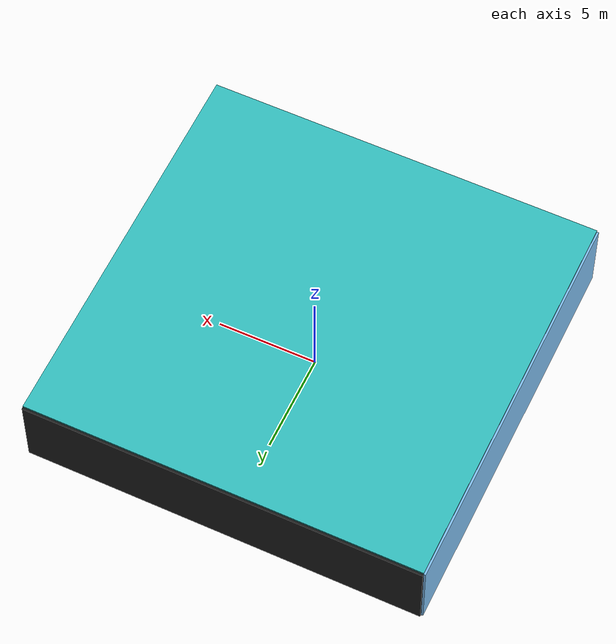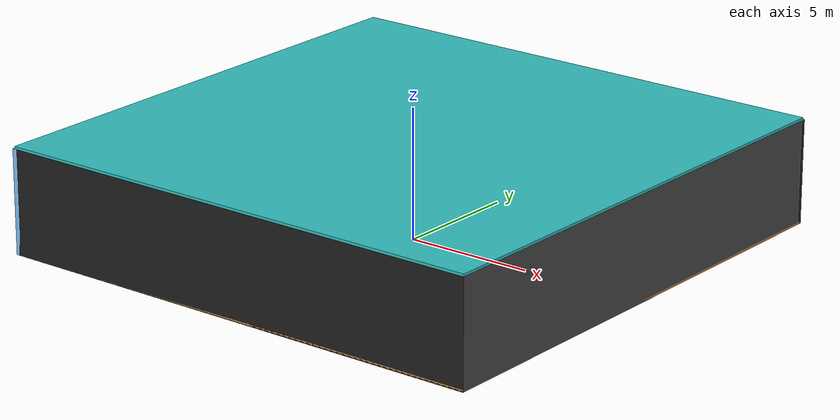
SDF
<sdf version="1.4">
 <world name="default">
  <physics type="ode">
   <max_step_size>0.001</max_step_size>
   <real_time_factor>1</real_time_factor>
   <real_time_update_rate>1000</real_time_update_rate>
   <gravity>0 0 -9.8</gravity>
  </physics>
  <scene><ambient>0.4 0.4 0.4 1</ambient><background>0.7 0.7 0.7 1</background><shadows>1</shadows></scene>
  <model name="Surrounding">
   <static>1</static>
   <link name="Ceiling">
    <collision name="Ceiling_Collision"><geometry><box><size>20 20 0.1</size></box></geometry></collision>
    <visual name="Ceiling_Visual">
     <geometry><box><size>20 20 0.1</size></box></geometry>
     <material>
      <script><uri>file://media/materials/scripts/gazebo.material</uri><name>Gazebo/Turquoise</name></script>
     </material>
    </visual>
    <pose>0 0 4.05 0 0 0</pose>
   </link>
   <link name="Wall_South">
    <collision name="Wall_South_Collision">
     <geometry><box><size>20 0 4</size></box></geometry>
     <pose>0 0 2 0 -0 0</pose>
    </collision>
    <visual name="Wall_South_Visual">
     <pose>0 0 2 0 -0 0</pose>
     <geometry><box><size>20 0 4</size></box></geometry>
     <material>
      <script><uri>file://media/materials/scripts/gazebo.material</uri><name>Gazebo/FlatBlack</name></script>
     </material>
    </visual>
    <velocity_decay><linear>0</linear><angular>0</angular></velocity_decay>
    <pose>0 -10 0 0 -0 0</pose>
   </link>
   <link name="Wall_East">
    <collision name="Wall_21_Collision">
     <geometry><box><size>20 0 4</size></box></geometry>
     <pose>0 0 2 0 -0 0</pose>
    </collision>
    <visual name="Wall_21_Visual">
     <pose>0 0 2 0 -0 0</pose>
     <geometry><box><size>20 0 4</size></box></geometry>
     <material>
      <script><uri>file://media/materials/scripts/gazebo.material</uri><name>Gazebo/Road</name></script>
     </material>
    </visual>
    <velocity_decay><linear>0</linear><angular>0</angular></velocity_decay>
    <pose>10 0 0 0 -0 1.5708</pose>
   </link>
   <link name="Wall_North">
    <collision name="Wall_22_Collision">
     <geometry><box><size>20 0.2 4</size></box></geometry>
     <pose>0 0 2 0 -0 0</pose>
    </collision>
    <visual name="Wall_22_Visual">
     <pose>0 0 2 0 -0 0</pose>
     <geometry><box><size>20 0.2 4</size></box></geometry>
     <material>
      <script><uri>file://media/materials/scripts/gazebo.material</uri><name>Gazebo/FlatBlack</name></script>
     </material>
    </visual>
    <velocity_decay><linear>0</linear><angular>0</angular></velocity_decay>
    <pose>0 10 0 0 -0 0</pose>
   </link>
   <link name="Wall_West">
    <collision name="Wall_23_Collision">
     <geometry><box><size>20 0.2 4</size></box></geometry>
     <pose>0 0 2 0 -0 0</pose>
    </collision>
    <visual name="Wall_23_Visual">
     <pose>0 0 2 0 -0 0</pose>
     <geometry><box><size>20 0.2 4</size></box></geometry>
     <material>
      <script><uri>file://media/materials/scripts/gazebo.material</uri><name>Gazebo/SkyBlue</name></script>
     </material>
    </visual>
    <velocity_decay><linear>0</linear><angular>0</angular></velocity_decay>
    <pose>-10 0 0 0 0 -1.5708</pose>
   </link>
   <link name="Ground_link">
    <collision name="collision">
     <pose>0 0 .05 0 -0 0</pose>
     <geometry><box><size>20 20 0.1</size></box></geometry>
    </collision>
    <visual name="visual">
     <pose>0 0 .05 0 -0 0</pose>
     <geometry><box><size>20 20 0.1</size></box></geometry>
     <material>
      <script><uri>file://media/materials/scripts/gazebo.material</uri><name>Gazebo/WoodFloor</name></script>
     </material>
    </visual>
   </link>
   <static>1</static>
  </model>
  <spherical_coordinates>
   <surface_model>EARTH_WGS84</surface_model>
   <latitude_deg>0</latitude_deg>
   <longitude_deg>0</longitude_deg>
   <elevation>0</elevation>
   <heading_deg>0</heading_deg>
  </spherical_coordinates>
  <light name="lightball_0" type="diffuse">
   <diffuse>0.8 0.8 0.8 1</diffuse>
   <specular>0.2 0.2 0.2 1</specular>
   <attenuation>
    <range>100</range>
    <constant>0.7</constant>
    <linear>0.01</linear>
    <quadratic>0.001</quadratic>
   </attenuation>
   <direction>-0.5 0.1 -0.9</direction>
   <pose>4.03177329889 9.82878373897 3.31045276476 0 0 0</pose>
  </light>
  <light name="lightball_1" type="diffuse">
   <diffuse>0.8 0.8 0.8 1</diffuse>
   <specular>0.2 0.2 0.2 1</specular>
   <attenuation>
    <range>100</range>
    <constant>0.7</constant>
    <linear>0.01</linear>
    <quadratic>0.001</quadratic>
   </attenuation>
   <direction>-0.5 0.1 -0.9</direction>
   <pose>9.72484503148 7.57059473767 0.500990831328 0 0 0</pose>
  </light>
  <light name="lightball_2" type="diffuse">
   <diffuse>0.8 0.8 0.8 1</diffuse>
   <specular>0.2 0.2 0.2 1</specular>
   <attenuation>
    <range>100</range>
    <constant>0.7</constant>
    <linear>0.01</linear>
    <quadratic>0.001</quadratic>
   </attenuation>
   <direction>-0.5 0.1 -0.9</direction>
   <pose>-8.33662259049 1.96324944046 3.18678403864 0 0 0</pose>
  </light>
  <light name="lightball_3" type="diffuse">
   <diffuse>0.8 0.8 0.8 1</diffuse>
   <specular>0.2 0.2 0.2 1</specular>
   <attenuation>
    <range>100</range>
    <constant>0.7</constant>
    <linear>0.01</linear>
    <quadratic>0.001</quadratic>
   </attenuation>
   <direction>-0.5 0.1 -0.9</direction>
   <pose>7.56543305696 -6.15794112099 2.93224492567 0 0 0</pose>
  </light>
  <light name="lightball_4" type="diffuse">
   <diffuse>0.8 0.8 0.8 1</diffuse>
   <specular>0.2 0.2 0.2 1</specular>
   <attenuation>
    <range>100</range>
    <constant>0.7</constant>
    <linear>0.01</linear>
    <quadratic>0.001</quadratic>
   </attenuation>
   <direction>-0.5 0.1 -0.9</direction>
   <pose>2.733702367 -9.57192091703 2.97269874132 0 0 0</pose>
  </light>
  <light name="lightball_5" type="diffuse">
   <diffuse>0.8 0.8 0.8 1</diffuse>
   <specular>0.2 0.2 0.2 1</specular>
   <attenuation>
    <range>100</range>
    <constant>0.7</constant>
    <linear>0.01</linear>
    <quadratic>0.001</quadratic>
   </attenuation>
   <direction>-0.5 0.1 -0.9</direction>
   <pose>1.02659199495 -5.80060057931 1.09268873889 0 0 0</pose>
  </light>
  <light name="lightball_6" type="diffuse">
   <diffuse>0.8 0.8 0.8 1</diffuse>
   <specular>0.2 0.2 0.2 1</specular>
   <attenuation>
    <range>100</range>
    <constant>0.7</constant>
    <linear>0.01</linear>
    <quadratic>0.001</quadratic>
   </attenuation>
   <direction>-0.5 0.1 -0.9</direction>
   <pose>-5.16189715094 -3.66595469563 2.27138593607 0 0 0</pose>
  </light>
  <light name="lightball_7" type="diffuse">
   <diffuse>0.8 0.8 0.8 1</diffuse>
   <specular>0.2 0.2 0.2 1</specular>
   <attenuation>
    <range>100</range>
    <constant>0.7</constant>
    <linear>0.01</linear>
    <quadratic>0.001</quadratic>
   </attenuation>
   <direction>-0.5 0.1 -0.9</direction>
   <pose>-8.13415040353 -7.95175589784 2.95140503501 0 0 0</pose>
  </light>
  <light name="lightball_8" type="diffuse">
   <diffuse>0.8 0.8 0.8 1</diffuse>
   <specular>0.2 0.2 0.2 1</specular>
   <attenuation>
    <range>100</range>
    <constant>0.7</constant>
    <linear>0.01</linear>
    <quadratic>0.001</quadratic>
   </attenuation>
   <direction>-0.5 0.1 -0.9</direction>
   <pose>9.04634358606 -6.19009337786 2.93601534485 0 0 0</pose>
  </light>
  <include><uri>model://cabinet</uri><pose>-4.49686841202 7.81235276569 0 0 0 2.76507465415</pose></include>
  <include><uri>model://table</uri><pose>-2.16707594367 -7.46638252988 0 0 0 1.21958546361</pose></include>
  <include>
   <uri>model://robocup_3Dsim_goal</uri>
   <pose>-1.91140755117 -5.16273999301 0 0 0 1.1051158967</pose>
  </include>
 </world>
</sdf>

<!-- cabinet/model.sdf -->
<sdf version="1.5">
  <model name="cabinet">
    <static>true</static>
    <link name="cabinet_bottom_plate">
      <inertial>
        <pose>0 0 -1 0 0 0</pose>
        <inertia>
          <ixx>2.050000</ixx>
          <ixy>0</ixy>
          <ixz>0</ixz>
          <iyy>2.050000</iyy>
          <iyz>0</iyz>
          <izz>2.050000</izz>
        </inertia>
        <mass>25.000000</mass>
      </inertial>
      <collision name="cabinet_bottom_plate_geom">
        <pose>0 0 0.010000 0 0 0</pose>
        <geometry>
          <box>
            <size>0.450000 0.450000 0.020000</size>
          </box>
        </geometry>
      </collision>
      <visual name="cabinet_bottom_plate_geom_visual">
        <pose>0 0 0.010000 0 0 0</pose>
        <geometry>
          <box>
            <size>0.450000 0.450000 0.020000</size>
          </box>
        </geometry>
        <material>
          <script>
            <uri>model://media/materials/scripts/gazebo.material</uri>
            <name>Gazebo/Wood</name>
          </script>
        </material>
      </visual>
      <collision name="cabinet_bottom_plate_geom_cabinet_back_plate">
        <pose>0.235000 0 0.510000 0 0 0</pose>
        <geometry>
          <box>
            <size>0.020000 0.450000 1.020000</size>
          </box>
        </geometry>
      </collision>
      <visual name="cabinet_bottom_plate_geom_cabinet_back_plate_visual">
        <pose>0.235000 0 0.510000 0 0 0</pose>
        <geometry>
          <box>
            <size>0.020000 0.450000 1.020000</size>
          </box>
        </geometry>
        <material>
          <script>
            <uri>model://media/materials/scripts/gazebo.material</uri>
            <name>Gazebo/Wood</name>
          </script>
        </material>
      </visual>
      <collision name="cabinet_bottom_plate_geom_cabinet_left_plate">
        <pose>0 0.235000 0.510000 0 0 0</pose>
        <geometry>
          <box>
            <size>0.450000 0.020000 1.020000</size>
          </box>
        </geometry>
      </collision>
      <visual name="cabinet_bottom_plate_geom_cabinet_left_plate_visual">
        <pose>0 0.235000 0.510000 0 0 0</pose>
        <geometry>
          <box>
            <size>0.450000 0.020000 1.020000</size>
          </box>
        </geometry>
        <material>
          <script>
            <uri>model://media/materials/scripts/gazebo.material</uri>
            <name>Gazebo/Wood</name>
          </script>
        </material>
      </visual>
      <collision name="cabinet_bottom_plate_geom_cabinet_middle_plate">
        <pose>0 0 0.510000 0 0 0</pose>
        <geometry>
          <box>
            <size>0.450000 0.450000 0.020000</size>
          </box>
        </geometry>
      </collision>
      <visual name="cabinet_bottom_plate_geom_cabinet_middle_plate_visual">
        <pose>0 0 0.510000 0 0 0</pose>
        <geometry>
          <box>
            <size>0.450000 0.450000 0.020000</size>
          </box>
        </geometry>
        <material>
          <script>
            <uri>model://media/materials/scripts/gazebo.material</uri>
            <name>Gazebo/Wood</name>
          </script>
        </material>
      </visual>
      <collision name="cabinet_bottom_plate_geom_cabinet_right_plate">
        <pose>0 -0.235000 0.510000 0 0 0</pose>
        <geometry>
          <box>
            <size>0.450000 0.020000 1.020000</size>
          </box>
        </geometry>
      </collision>
      <visual name="cabinet_bottom_plate_geom_cabinet_right_plate_visual">
        <pose>0 -0.235000 0.510000 0 0 0</pose>
        <geometry>
          <box>
            <size>0.450000 0.020000 1.020000</size>
          </box>
        </geometry>
        <material>
          <script>
            <uri>model://media/materials/scripts/gazebo.material</uri>
            <name>Gazebo/Wood</name>
          </script>
        </material>
      </visual>
      <collision name="cabinet_bottom_plate_geom_cabinet_top_plate">
        <pose>0 0 1.010000 0 0 0</pose>
        <geometry>
          <box>
            <size>0.450000 0.450000 0.020000</size>
          </box>
        </geometry>
      </collision>
      <visual name="cabinet_bottom_plate_geom_cabinet_top_plate_visual">
        <pose>0 0 1.010000 0 0 0</pose>
        <geometry>
          <box>
            <size>0.450000 0.450000 0.020000</size>
          </box>
        </geometry>
        <material>
          <script>
            <uri>model://media/materials/scripts/gazebo.material</uri>
            <name>Gazebo/Wood</name>
          </script>
        </material>
      </visual>
    </link>
  </model>
</sdf>

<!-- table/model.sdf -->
<sdf version="1.5">
  <model name="table">
    <static>true</static>
    <link name="link">
      <collision name="surface">
        <pose>0 0 1.0 0 0 0</pose>
        <geometry>
          <box>
            <size>1.5 0.8 0.03</size>
          </box>
        </geometry>
        <surface>
          <friction>
            <ode>
              <mu>0.6</mu>
              <mu2>0.6</mu2>
            </ode>
          </friction>
        </surface>
      </collision>
      <visual name="visual1">
        <pose>0 0 1.0 0 0 0</pose>
        <geometry>
          <box>
            <size>1.5 0.8 0.03</size>
          </box>
        </geometry>
        <material>
          <script>
            <uri>model://media/materials/scripts/gazebo.material</uri>
            <name>Gazebo/Wood</name>
          </script>
        </material>
      </visual>
      <collision name="front_left_leg">
        <pose>0.68 0.38 0.5 0 0 0</pose>
        <geometry>
          <cylinder>
            <radius>0.02</radius>
            <length>1.0</length>
          </cylinder>
        </geometry>
      </collision>
      <visual name="front_left_leg">
        <pose>0.68 0.38 0.5 0 0 0</pose>
        <geometry>
          <cylinder>
            <radius>0.02</radius>
            <length>1.0</length>
          </cylinder>
        </geometry>
        <material>
          <script>
            <uri>model://media/materials/scripts/gazebo.material</uri>
            <name>Gazebo/Grey</name>
          </script>
        </material>
      </visual>
      <collision name="front_right_leg">
        <pose>0.68 -0.38 0.5 0 0 0</pose>
        <geometry>
          <cylinder>
            <radius>0.02</radius>
            <length>1.0</length>
          </cylinder>
        </geometry>
      </collision>
      <visual name="front_right_leg">
        <pose>0.68 -0.38 0.5 0 0 0</pose>
        <geometry>
          <cylinder>
            <radius>0.02</radius>
            <length>1.0</length>
          </cylinder>
        </geometry>
        <material>
          <script>
            <uri>model://media/materials/scripts/gazebo.material</uri>
            <name>Gazebo/Grey</name>
          </script>
        </material>
      </visual>
      <collision name="back_right_leg">
        <pose>-0.68 -0.38 0.5 0 0 0</pose>
        <geometry>
          <cylinder>
            <radius>0.02</radius>
            <length>1.0</length>
          </cylinder>
        </geometry>
      </collision>
      <visual name="back_right_leg">
        <pose>-0.68 -0.38 0.5 0 0 0</pose>
        <geometry>
          <cylinder>
            <radius>0.02</radius>
            <length>1.0</length>
          </cylinder>
        </geometry>
        <material>
          <script>
            <uri>model://media/materials/scripts/gazebo.material</uri>
            <name>Gazebo/Grey</name>
          </script>
        </material>
      </visual>
      <collision name="back_left_leg">
        <pose>-0.68 0.38 0.5 0 0 0</pose>
        <geometry>
          <cylinder>
            <radius>0.02</radius>
            <length>1.0</length>
          </cylinder>
        </geometry>
      </collision>
      <visual name="back_left_leg">
        <pose>-0.68 0.38 0.5 0 0 0</pose>
        <geometry>
          <cylinder>
            <radius>0.02</radius>
            <length>1.0</length>
          </cylinder>
        </geometry>
        <material>
          <script>
            <uri>model://media/materials/scripts/gazebo.material</uri>
            <name>Gazebo/Grey</name>
          </script>
        </material>
      </visual>
    </link>
  </model>
</sdf>

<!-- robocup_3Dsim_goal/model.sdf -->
<sdf version="1.5">
  <model name="robocup_3d_goal">
    <static>true</static>
    <link name="left_post">
      <pose>0 1.05 0.45 0 0 0</pose>
      <collision name="collision">
        <geometry>
          <cylinder>
            <radius>0.05</radius>
            <length>0.9</length>
          </cylinder>
        </geometry>
      </collision>
      <visual name="visual">
        <geometry>
          <cylinder>
            <radius>0.05</radius>
            <length>0.9</length>
          </cylinder>
        </geometry>
        <material>
          <script>
            <uri>file://media/materials/scripts/gazebo.material</uri>
            <name>Gazebo/ZincYellow</name>
          </script>
        </material>
      </visual>
    </link>
    <link name="left_support_horiz_lower">
      <pose>0.30 1.05 0.01 0 0 0</pose>
      <collision name="collision">
        <geometry>
          <box>
            <size>0.50 0.02 0.02</size>
          </box>
        </geometry>
      </collision>
      <visual name="visual">
        <geometry>
          <box>
            <size>0.50 0.02 0.02</size>
          </box>
        </geometry>
        <material>
          <script>
            <uri>file://media/materials/scripts/gazebo.material</uri>
            <name>Gazebo/White</name>
          </script>
        </material>
      </visual>
    </link>
    <link name="left_support_horiz_upper">
      <pose>0.30 1.05 0.79 0 0 0</pose>
      <collision name="collision">
        <geometry>
          <box>
            <size>0.50 0.02 0.02</size>
          </box>
        </geometry>
      </collision>
      <visual name="visual">
        <geometry>
          <box>
            <size>0.50 0.02 0.02</size>
          </box>
        </geometry>
        <material>
          <script>
            <uri>file://media/materials/scripts/gazebo.material</uri>
            <name>Gazebo/White</name>
          </script>
        </material>
      </visual>
    </link>
    <link name="left_support_vertical">
      <pose>0.56 1.05 0.4 0 1.5708 0</pose>
      <collision name="collision">
        <geometry>
          <box>
            <size>0.80 0.02 0.02</size>
          </box>
        </geometry>
      </collision>
      <visual name="visual">
        <geometry>
          <box>
            <size>0.80 0.02 0.02</size>
          </box>
        </geometry>
        <material>
          <script>
            <uri>file://media/materials/scripts/gazebo.material</uri>
            <name>Gazebo/White</name>
          </script>
        </material>
      </visual>
    </link>
    <link name="right_support_horiz_lower">
      <pose>0.30 -1.05 0.01 0 0 0</pose>
      <collision name="collision">
        <geometry>
          <box>
            <size>0.50 0.02 0.02</size>
          </box>
        </geometry>
      </collision>
      <visual name="visual">
        <geometry>
          <box>
            <size>0.50 0.02 0.02</size>
          </box>
        </geometry>
        <material>
          <script>
            <uri>file://media/materials/scripts/gazebo.material</uri>
            <name>Gazebo/White</name>
          </script>
        </material>
      </visual>
    </link>
    <link name="right_support_horiz_upper">
      <pose>0.30 -1.05 0.79 0 0 0</pose>
      <collision name="collision">
        <geometry>
          <box>
            <size>0.50 0.02 0.02</size>
          </box>
        </geometry>
      </collision>
      <visual name="visual">
        <geometry>
          <box>
            <size>0.50 0.02 0.02</size>
          </box>
        </geometry>
        <material>
          <script>
            <uri>file://media/materials/scripts/gazebo.material</uri>
            <name>Gazebo/White</name>
          </script>
        </material>
      </visual>
    </link>
    <link name="right_support_vertical">
      <pose>0.56 -1.05 0.4 0 1.5708 0</pose>
      <collision name="collision">
        <geometry>
          <box>
            <size>0.80 0.02 0.02</size>
          </box>
        </geometry>
      </collision>
      <visual name="visual">
        <geometry>
          <box>
            <size>0.80 0.02 0.02</size>
          </box>
        </geometry>
        <material>
          <script>
            <uri>file://media/materials/scripts/gazebo.material</uri>
            <name>Gazebo/White</name>
          </script>
        </material>
      </visual>
    </link>
    <link name="center_support_horiz_lower">
      <pose>0.56 0 0.01 0 1.5708 0</pose>
      <collision name="collision">
        <geometry>
          <box>
            <size>0.02 2.08 0.02</size>
          </box>
        </geometry>
      </collision>
      <visual name="visual">
        <geometry>
          <box>
            <size>0.02 2.08 0.02</size>
          </box>
        </geometry>
        <material>
          <script>
            <uri>file://media/materials/scripts/gazebo.material</uri>
            <name>Gazebo/White</name>
          </script>
        </material>
      </visual>
    </link>
    <link name="center_support_horiz_upper">
      <pose>0.56 0 0.79 0 1.5708 0</pose>
      <collision name="collision">
        <geometry>
          <box>
            <size>0.02 2.08 0.02</size>
          </box>
        </geometry>
      </collision>
      <visual name="visual">
        <geometry>
          <box>
            <size>0.02 2.08 0.02</size>
          </box>
        </geometry>
        <material>
          <script>
            <uri>file://media/materials/scripts/gazebo.material</uri>
            <name>Gazebo/White</name>
          </script>
        </material>
      </visual>
    </link>
    <link name="right_post">
      <pose>0 -1.05 0.45 0 0 0</pose>
      <collision name="collision">
        <geometry>
          <cylinder>
            <radius>0.05</radius>
            <length>0.9</length>
          </cylinder>
        </geometry>
      </collision>
      <visual name="visual">
        <geometry>
          <cylinder>
            <radius>0.05</radius>
            <length>0.9</length>
          </cylinder>
        </geometry>
        <material>
          <script>
            <uri>file://media/materials/scripts/gazebo.material</uri>
            <name>Gazebo/ZincYellow</name>
          </script>
        </material>
      </visual>
    </link>
    <link name="crossbar">
      <pose>0 0 0.85 1.57 1.57 0</pose>
      <collision name="collision">
        <geometry>
          <cylinder>
            <radius>0.05</radius>
            <length>2.0</length>
          </cylinder>
        </geometry>
      </collision>
      <visual name="visual">
        <geometry>
          <cylinder>
            <radius>0.05</radius>
            <length>2.0</length>
          </cylinder>
        </geometry>
        <material>
          <script>
            <uri>file://media/materials/scripts/gazebo.material</uri>
            <name>Gazebo/ZincYellow</name>
          </script>
        </material>
      </visual>
    </link>
    <link name="center_net">
      <pose>0.56 0 0.40 0 0 0</pose>
      <collision name="collision">
        <geometry>
          <box>
            <size>0.01 2.1 0.80</size>
          </box>
        </geometry>
      </collision>
      <visual name="visual">
        <geometry>
          <box>
            <size>0.01 2.1 0.80</size>
          </box>
        </geometry>
        <material>
          <script>
            <uri>model://../model_source/models/robocup09_spl_field/materials/scripts/</uri>
            <uri>model://../model_source/models/robocup09_spl_field/materials/textures/</uri>
            <name>RoboCup/Net</name>
          </script>
        </material>
      </visual>
    </link>
    <link name="left_net">
      <pose>0.30 1.05 0.40 0 0 0</pose>
      <collision name="collision">
        <geometry>
          <box>
            <size>0.50 0.01 0.76</size>
          </box>
        </geometry>
      </collision>
      <visual name="visual">
        <geometry>
          <box>
            <size>0.50 0.01 0.76</size>
          </box>
        </geometry>
        <material>
          <script>
            <uri>model://../model_source/models/robocup09_spl_field/materials/scripts/</uri>
            <uri>model://../model_source/models/robocup09_spl_field/materials/textures/</uri>
            <name>RoboCup/Net</name>
          </script>
        </material>
      </visual>
    </link>
    <link name="right_net">
      <pose>0.30 -1.05 0.40 0 0 0</pose>
      <collision name="collision">
        <geometry>
          <box>
            <size>0.50 0.01 0.76</size>
          </box>
        </geometry>
      </collision>
      <visual name="visual">
        <geometry>
          <box>
            <size>0.50 0.01 0.76</size>
          </box>
        </geometry>
        <material>
          <script>
            <uri>model://../model_source/models/robocup09_spl_field/materials/scripts/</uri>
            <uri>model://../model_source/models/robocup09_spl_field/materials/textures/</uri>
            <name>RoboCup/Net</name>
          </script>
        </material>
      </visual>
    </link>
  </model>
</sdf>
